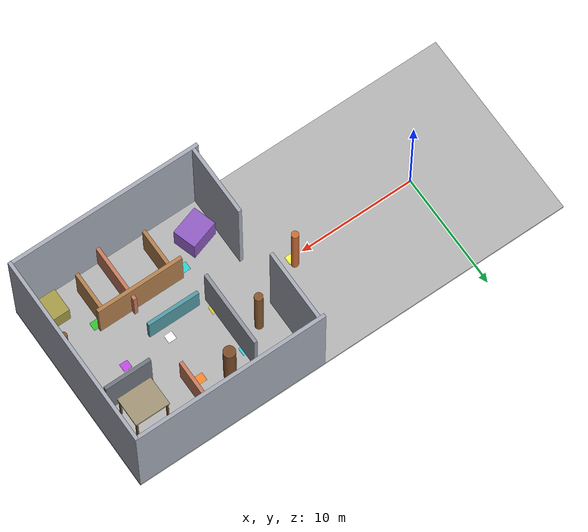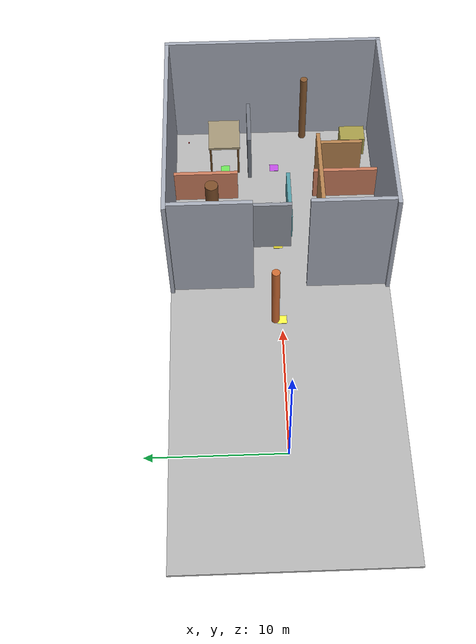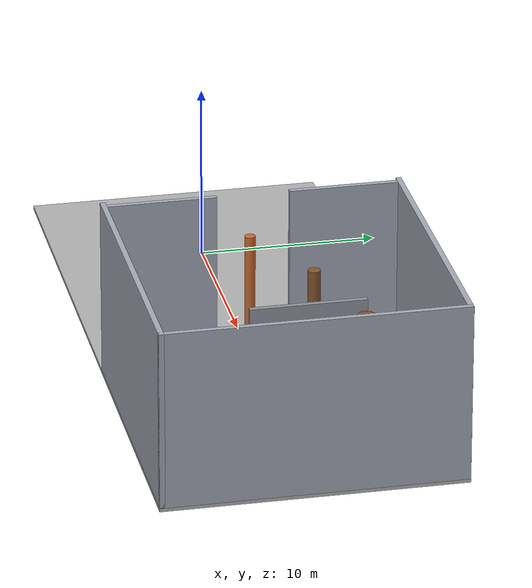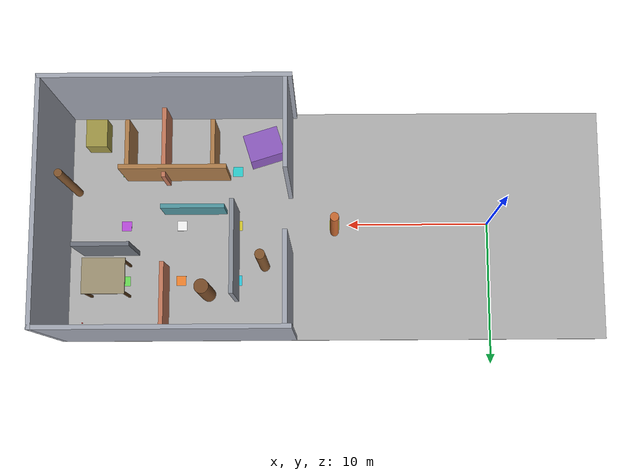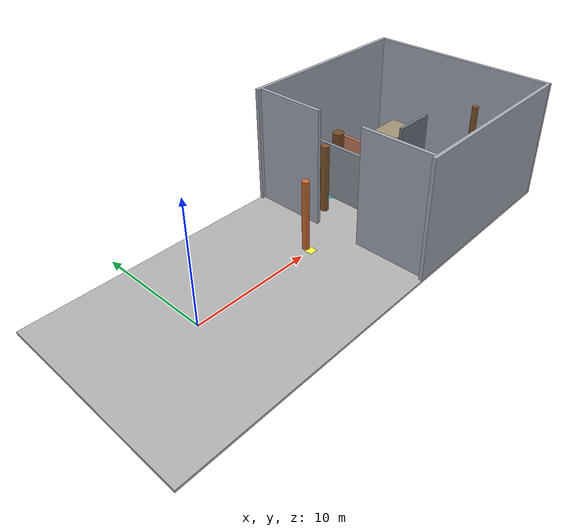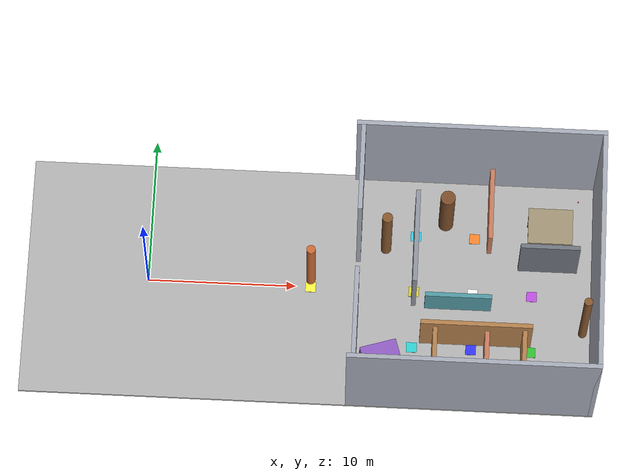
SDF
<sdf version="1.9">
 <world name="single_agent_search_room">
  <model name="ground">
   <static>true</static>
   <link name="link">
    <collision name="collision"><geometry><box><size>38.6 16.6 0.2</size></box></geometry></collision>
    <visual name="visual">
     <geometry><box><size>38.6 16.6 0.2</size></box></geometry>
     <material><ambient>0.60 0.60 0.60 1</ambient><diffuse>0.70 0.70 0.70 1</diffuse></material>
    </visual>
   </link>
   <pose>11 0 -0.1 0 0 0</pose>
  </model>
  <model name="wall_B_west_south">
   <static>true</static>
   <link name="link">
    <collision name="collision"><geometry><box><size>0.3 6.0 10.0</size></box></geometry></collision>
    <visual name="visual">
     <geometry><box><size>0.3 6.0 10.0</size></box></geometry>
     <material><ambient>0.55 0.57 0.62 1</ambient><diffuse>0.65 0.67 0.72 1</diffuse></material>
    </visual>
   </link>
   <pose>14.15 -5.0 5.0 0 0 0</pose>
  </model>
  <model name="wall_B_west_north">
   <static>true</static>
   <link name="link">
    <collision name="collision"><geometry><box><size>0.3 6.0 10.0</size></box></geometry></collision>
    <visual name="visual">
     <geometry><box><size>0.3 6.0 10.0</size></box></geometry>
     <material><ambient>0.55 0.57 0.62 1</ambient><diffuse>0.65 0.67 0.72 1</diffuse></material>
    </visual>
   </link>
   <pose>14.15 5.0 5.0 0 0 0</pose>
  </model>
  <model name="wall_B_south">
   <static>true</static>
   <link name="link">
    <collision name="collision"><geometry><box><size>16.6 0.3 10.0</size></box></geometry></collision>
    <visual name="visual">
     <geometry><box><size>16.6 0.3 10.0</size></box></geometry>
     <material><ambient>0.55 0.57 0.62 1</ambient><diffuse>0.65 0.67 0.72 1</diffuse></material>
    </visual>
   </link>
   <pose>22.0 -8.15 5.0 0 0 0</pose>
  </model>
  <model name="wall_B_north">
   <static>true</static>
   <link name="link">
    <collision name="collision"><geometry><box><size>16.6 0.3 10.0</size></box></geometry></collision>
    <visual name="visual">
     <geometry><box><size>16.6 0.3 10.0</size></box></geometry>
     <material><ambient>0.55 0.57 0.62 1</ambient><diffuse>0.65 0.67 0.72 1</diffuse></material>
    </visual>
   </link>
   <pose>22.0 8.15 5.0 0 0 0</pose>
  </model>
  <model name="wall_B_east">
   <static>true</static>
   <link name="link">
    <collision name="collision"><geometry><box><size>0.3 16.6 10.0</size></box></geometry></collision>
    <visual name="visual">
     <geometry><box><size>0.3 16.6 10.0</size></box></geometry>
     <material><ambient>0.55 0.57 0.62 1</ambient><diffuse>0.65 0.67 0.72 1</diffuse></material>
    </visual>
   </link>
   <pose>30.15 0 5.0 0 0 0</pose>
  </model>
  <model name="pillar_corr">
   <static>true</static>
   <link name="link">
    <collision name="collision">
     <geometry><cylinder><radius>0.30</radius><length>6.0</length></cylinder></geometry>
    </collision>
    <visual name="visual">
     <geometry><cylinder><radius>0.30</radius><length>6.0</length></cylinder></geometry>
     <material><ambient>0.70 0.35 0.15 1</ambient><diffuse>0.80 0.42 0.20 1</diffuse></material>
    </visual>
   </link>
   <pose>11.0 0.5 3.0 0 0 0</pose>
  </model>
  <model name="crate_B1">
   <static>true</static>
   <link name="link">
    <collision name="collision"><geometry><box><size>2.5 2.0 2.2</size></box></geometry></collision>
    <visual name="visual">
     <geometry><box><size>2.5 2.0 2.2</size></box></geometry>
     <material><ambient>0.48 0.30 0.68 1</ambient><diffuse>0.56 0.36 0.76 1</diffuse></material>
    </visual>
   </link>
   <pose>16.0 -5.5 1.1 0 0 0.3</pose>
  </model>
  <model name="pillar_B1">
   <static>true</static>
   <link name="link">
    <collision name="collision">
     <geometry><cylinder><radius>0.50</radius><length>5.0</length></cylinder></geometry>
    </collision>
    <visual name="visual">
     <geometry><cylinder><radius>0.50</radius><length>5.0</length></cylinder></geometry>
     <material><ambient>0.40 0.25 0.12 1</ambient><diffuse>0.48 0.30 0.16 1</diffuse></material>
    </visual>
   </link>
   <pose>20.0 5.0 2.5 0 0 0</pose>
  </model>
  <model name="arch_wall_B_south">
   <static>true</static>
   <link name="link">
    <collision name="collision"><geometry><box><size>0.3 5.0 3.0</size></box></geometry></collision>
    <visual name="visual">
     <geometry><box><size>0.3 5.0 3.0</size></box></geometry>
     <material><ambient>0.70 0.40 0.30 1</ambient><diffuse>0.78 0.48 0.36 1</diffuse></material>
    </visual>
   </link>
   <pose>23.0 -5.5 1.5 0 0 0</pose>
  </model>
  <model name="arch_wall_B_north">
   <static>true</static>
   <link name="link">
    <collision name="collision"><geometry><box><size>0.3 5.0 3.0</size></box></geometry></collision>
    <visual name="visual">
     <geometry><box><size>0.3 5.0 3.0</size></box></geometry>
     <material><ambient>0.70 0.40 0.30 1</ambient><diffuse>0.78 0.48 0.36 1</diffuse></material>
    </visual>
   </link>
   <pose>23.0 5.5 1.5 0 0 0</pose>
  </model>
  <model name="partition_B1">
   <static>true</static>
   <link name="link">
    <collision name="collision"><geometry><box><size>4.5 0.3 2.5</size></box></geometry></collision>
    <visual name="visual">
     <geometry><box><size>4.5 0.3 2.5</size></box></geometry>
     <material><ambient>0.25 0.52 0.56 1</ambient><diffuse>0.32 0.60 0.64 1</diffuse></material>
    </visual>
   </link>
   <pose>21.0 -1.0 1.25 0 0 0</pose>
  </model>
  <model name="shelf_B_platform">
   <static>true</static>
   <link name="link">
    <collision name="collision"><geometry><box><size>3.0 2.5 0.2</size></box></geometry></collision>
    <visual name="visual">
     <geometry><box><size>3.0 2.5 0.2</size></box></geometry>
     <material><ambient>0.55 0.50 0.40 1</ambient><diffuse>0.63 0.58 0.46 1</diffuse></material>
    </visual>
   </link>
   <pose>27.0 4.0 3.0 0 0 0</pose>
  </model>
  <model name="shelf_B_leg_ne">
   <static>true</static>
   <link name="link">
    <collision name="collision"><geometry><box><size>0.15 0.15 2.9</size></box></geometry></collision>
    <visual name="visual">
     <geometry><box><size>0.15 0.15 2.9</size></box></geometry>
     <material><ambient>0.35 0.22 0.10 1</ambient><diffuse>0.42 0.28 0.14 1</diffuse></material>
    </visual>
   </link>
   <pose>28.35 5.10 1.45 0 0 0</pose>
  </model>
  <model name="shelf_B_leg_nw">
   <static>true</static>
   <link name="link">
    <collision name="collision"><geometry><box><size>0.15 0.15 2.9</size></box></geometry></collision>
    <visual name="visual">
     <geometry><box><size>0.15 0.15 2.9</size></box></geometry>
     <material><ambient>0.35 0.22 0.10 1</ambient><diffuse>0.42 0.28 0.14 1</diffuse></material>
    </visual>
   </link>
   <pose>25.65 5.10 1.45 0 0 0</pose>
  </model>
  <model name="shelf_B_leg_se">
   <static>true</static>
   <link name="link">
    <collision name="collision"><geometry><box><size>0.15 0.15 2.9</size></box></geometry></collision>
    <visual name="visual">
     <geometry><box><size>0.15 0.15 2.9</size></box></geometry>
     <material><ambient>0.35 0.22 0.10 1</ambient><diffuse>0.42 0.28 0.14 1</diffuse></material>
    </visual>
   </link>
   <pose>28.35 2.90 1.45 0 0 0</pose>
  </model>
  <model name="shelf_B_leg_sw">
   <static>true</static>
   <link name="link">
    <collision name="collision"><geometry><box><size>0.15 0.15 2.9</size></box></geometry></collision>
    <visual name="visual">
     <geometry><box><size>0.15 0.15 2.9</size></box></geometry>
     <material><ambient>0.35 0.22 0.10 1</ambient><diffuse>0.42 0.28 0.14 1</diffuse></material>
    </visual>
   </link>
   <pose>25.65 2.90 1.45 0 0 0</pose>
  </model>
  <model name="crate_B2">
   <static>true</static>
   <link name="link">
    <collision name="collision"><geometry><box><size>1.5 2.0 1.8</size></box></geometry></collision>
    <visual name="visual">
     <geometry><box><size>1.5 2.0 1.8</size></box></geometry>
     <material><ambient>0.55 0.52 0.22 1</ambient><diffuse>0.64 0.60 0.28 1</diffuse></material>
    </visual>
   </link>
   <pose>28.0 -6.5 0.9 0 0 0</pose>
  </model>
  <include><uri>model://red_can</uri><name>red_can_2</name><pose>29.0 7.0 0.0 0 0 -0.3</pose></include>
  <model name="flow_corr">
   <static>true</static>
   <link name="link">
    <visual name="visual">
     <geometry><box><size>0.7 0.7 0.02</size></box></geometry>
     <material><ambient>0.90 0.90 0.20 1</ambient><diffuse>0.98 0.98 0.26 1</diffuse></material>
    </visual>
    <collision name="collision"><geometry><box><size>0.7 0.7 0.02</size></box></geometry></collision>
   </link>
   <pose>11 0 0.01 0 0 0</pose>
  </model>
  <model name="flow_B_sw">
   <static>true</static>
   <link name="link">
    <visual name="visual">
     <geometry><box><size>0.7 0.7 0.02</size></box></geometry>
     <material><ambient>0.12 0.72 0.72 1</ambient><diffuse>0.18 0.82 0.82 1</diffuse></material>
    </visual>
    <collision name="collision"><geometry><box><size>0.7 0.7 0.02</size></box></geometry></collision>
   </link>
   <pose>18 -4 0.01 0 0 0</pose>
  </model>
  <model name="flow_B_s">
   <static>true</static>
   <link name="link">
    <visual name="visual">
     <geometry><box><size>0.7 0.7 0.02</size></box></geometry>
     <material><ambient>0.15 0.15 0.85 1</ambient><diffuse>0.20 0.20 0.95 1</diffuse></material>
    </visual>
    <collision name="collision"><geometry><box><size>0.7 0.7 0.02</size></box></geometry></collision>
   </link>
   <pose>22 -4 0.01 0 0 0</pose>
  </model>
  <model name="flow_B_se">
   <static>true</static>
   <link name="link">
    <visual name="visual">
     <geometry><box><size>0.7 0.7 0.02</size></box></geometry>
     <material><ambient>0.15 0.65 0.15 1</ambient><diffuse>0.20 0.75 0.20 1</diffuse></material>
    </visual>
    <collision name="collision"><geometry><box><size>0.7 0.7 0.02</size></box></geometry></collision>
   </link>
   <pose>26 -4 0.01 0 0 0</pose>
  </model>
  <model name="flow_B_w">
   <static>true</static>
   <link name="link">
    <visual name="visual">
     <geometry><box><size>0.7 0.7 0.02</size></box></geometry>
     <material><ambient>0.75 0.70 0.12 1</ambient><diffuse>0.85 0.80 0.18 1</diffuse></material>
    </visual>
    <collision name="collision"><geometry><box><size>0.7 0.7 0.02</size></box></geometry></collision>
   </link>
   <pose>18 0 0.01 0 0 0</pose>
  </model>
  <model name="flow_B_center">
   <static>true</static>
   <link name="link">
    <visual name="visual">
     <geometry><box><size>0.7 0.7 0.02</size></box></geometry>
     <material><ambient>0.92 0.92 0.92 1</ambient><diffuse>0.98 0.98 0.98 1</diffuse></material>
    </visual>
    <collision name="collision"><geometry><box><size>0.7 0.7 0.02</size></box></geometry></collision>
   </link>
   <pose>22 0 0.01 0 0 0</pose>
  </model>
  <model name="flow_B_e">
   <static>true</static>
   <link name="link">
    <visual name="visual">
     <geometry><box><size>0.7 0.7 0.02</size></box></geometry>
     <material><ambient>0.65 0.25 0.78 1</ambient><diffuse>0.74 0.30 0.88 1</diffuse></material>
    </visual>
    <collision name="collision"><geometry><box><size>0.7 0.7 0.02</size></box></geometry></collision>
   </link>
   <pose>26 0 0.01 0 0 0</pose>
  </model>
  <model name="flow_B_nw">
   <static>true</static>
   <link name="link">
    <visual name="visual">
     <geometry><box><size>0.7 0.7 0.02</size></box></geometry>
     <material><ambient>0.12 0.70 0.78 1</ambient><diffuse>0.18 0.80 0.88 1</diffuse></material>
    </visual>
    <collision name="collision"><geometry><box><size>0.7 0.7 0.02</size></box></geometry></collision>
   </link>
   <pose>18 4 0.01 0 0 0</pose>
  </model>
  <model name="flow_B_n">
   <static>true</static>
   <link name="link">
    <visual name="visual">
     <geometry><box><size>0.7 0.7 0.02</size></box></geometry>
     <material><ambient>0.86 0.42 0.12 1</ambient><diffuse>0.96 0.52 0.18 1</diffuse></material>
    </visual>
    <collision name="collision"><geometry><box><size>0.7 0.7 0.02</size></box></geometry></collision>
   </link>
   <pose>22 4 0.01 0 0 0</pose>
  </model>
  <model name="flow_B_ne">
   <static>true</static>
   <link name="link">
    <visual name="visual">
     <geometry><box><size>0.7 0.7 0.02</size></box></geometry>
     <material><ambient>0.36 0.78 0.28 1</ambient><diffuse>0.42 0.88 0.34 1</diffuse></material>
    </visual>
    <collision name="collision"><geometry><box><size>0.7 0.7 0.02</size></box></geometry></collision>
   </link>
   <pose>26 4 0.01 0 0 0</pose>
  </model>
  <model name="pillar_B2">
   <static>true</static>
   <link name="link">
    <collision name="collision">
     <geometry><cylinder><radius>0.35</radius><length>6.0</length></cylinder></geometry>
    </collision>
    <visual name="visual">
     <geometry><cylinder><radius>0.35</radius><length>6.0</length></cylinder></geometry>
     <material><ambient>0.44 0.28 0.14 1</ambient><diffuse>0.52 0.34 0.18 1</diffuse></material>
    </visual>
   </link>
   <pose>16.0 3.0 3.0 0 0 0</pose>
  </model>
  <model name="pillar_B3">
   <static>true</static>
   <link name="link">
    <collision name="collision">
     <geometry><cylinder><radius>0.28</radius><length>6.5</length></cylinder></geometry>
    </collision>
    <visual name="visual">
     <geometry><cylinder><radius>0.28</radius><length>6.5</length></cylinder></geometry>
     <material><ambient>0.44 0.28 0.14 1</ambient><diffuse>0.52 0.34 0.18 1</diffuse></material>
    </visual>
   </link>
   <pose>29.5 -2.5 3.25 0 0 0</pose>
  </model>
  <model name="tall_wall_B1">
   <static>true</static>
   <link name="link">
    <collision name="collision"><geometry><box><size>0.3 6.5 5.0</size></box></geometry></collision>
    <visual name="visual">
     <geometry><box><size>0.3 6.5 5.0</size></box></geometry>
     <material><ambient>0.46 0.48 0.52 1</ambient><diffuse>0.56 0.58 0.62 1</diffuse></material>
    </visual>
   </link>
   <pose>18.0 2.25 2.5 0 0 0</pose>
  </model>
  <model name="tall_wall_B2">
   <static>true</static>
   <link name="link">
    <collision name="collision"><geometry><box><size>4.0 0.3 4.5</size></box></geometry></collision>
    <visual name="visual">
     <geometry><box><size>4.0 0.3 4.5</size></box></geometry>
     <material><ambient>0.36 0.38 0.42 1</ambient><diffuse>0.44 0.46 0.50 1</diffuse></material>
    </visual>
   </link>
   <pose>27.0 2.0 2.25 0 0 0</pose>
  </model>
  <model name="branch_stem">
   <static>true</static>
   <link name="link">
    <collision name="collision"><geometry><box><size>7.5 0.3 4.0</size></box></geometry></collision>
    <visual name="visual">
     <geometry><box><size>7.5 0.3 4.0</size></box></geometry>
     <material><ambient>0.60 0.42 0.24 1</ambient><diffuse>0.70 0.50 0.30 1</diffuse></material>
    </visual>
   </link>
   <pose>22.25 -3.5 2.0 0 0 0</pose>
  </model>
  <model name="branch_arm1">
   <static>true</static>
   <link name="link">
    <collision name="collision"><geometry><box><size>0.3 3.5 3.5</size></box></geometry></collision>
    <visual name="visual">
     <geometry><box><size>0.3 3.5 3.5</size></box></geometry>
     <material><ambient>0.60 0.42 0.24 1</ambient><diffuse>0.70 0.50 0.30 1</diffuse></material>
    </visual>
   </link>
   <pose>19.5 -5.25 1.75 0 0 0</pose>
  </model>
  <model name="branch_arm2">
   <static>true</static>
   <link name="link">
    <collision name="collision"><geometry><box><size>0.3 3.5 3.5</size></box></geometry></collision>
    <visual name="visual">
     <geometry><box><size>0.3 3.5 3.5</size></box></geometry>
     <material><ambient>0.60 0.42 0.24 1</ambient><diffuse>0.70 0.50 0.30 1</diffuse></material>
    </visual>
   </link>
   <pose>25.5 -5.25 1.75 0 0 0</pose>
  </model>
 </world>
</sdf>
